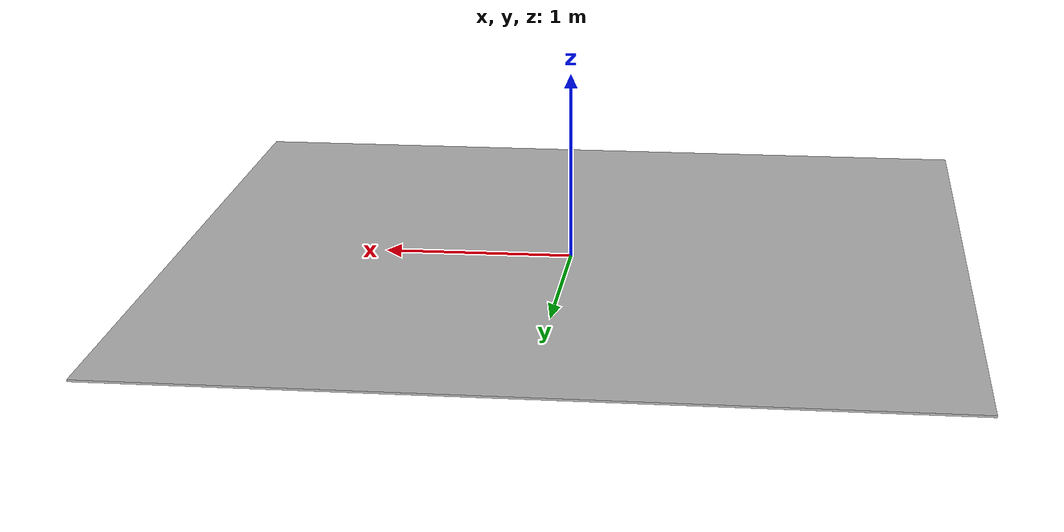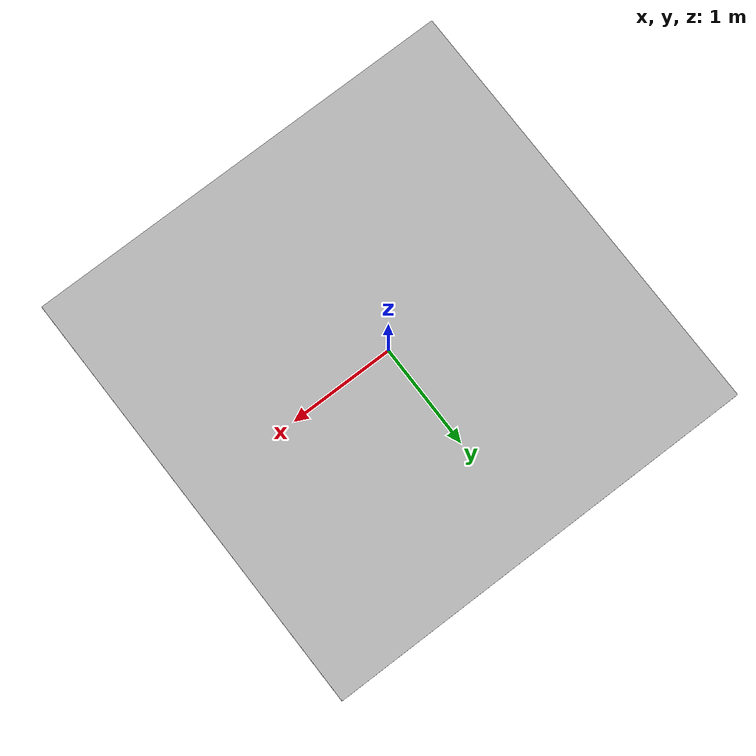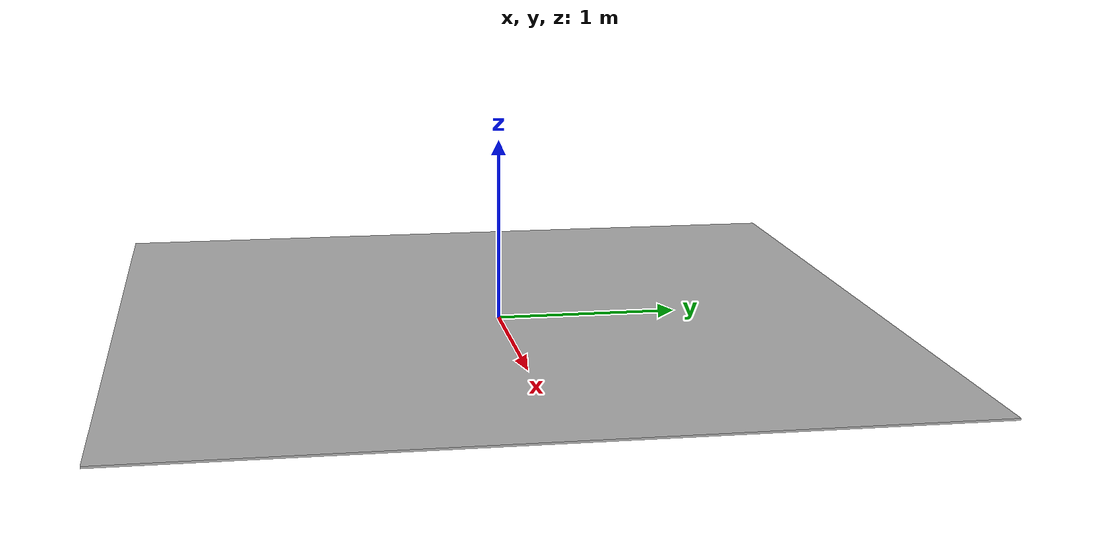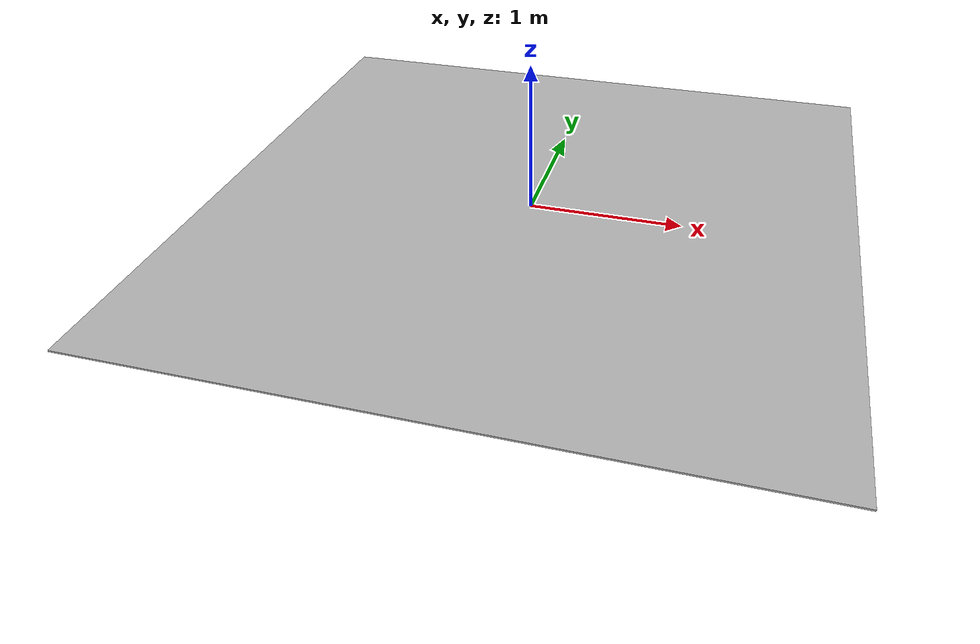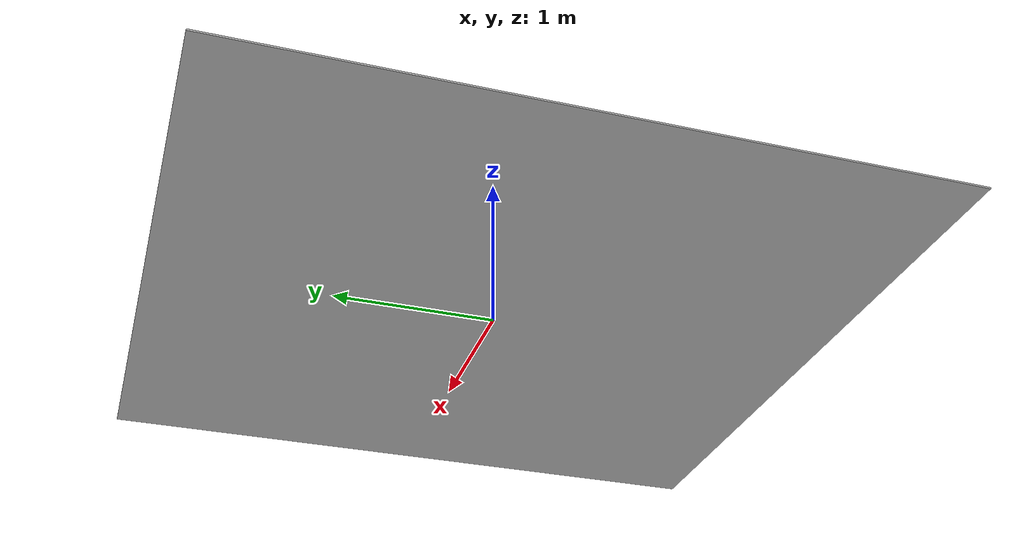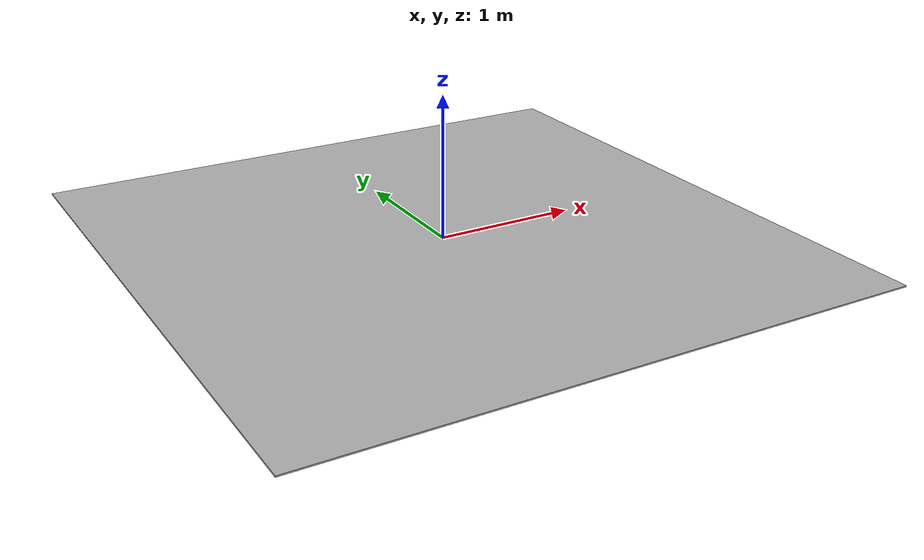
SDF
<?xml version="1.0" ?>
<sdf version="1.6">
  <model name="com_map">
    <pose>0 0 0.01 0 0 0</pose>
    <static>true</static>
    <link name="link">
      <inertial>
        <mass>0.5</mass>
        <inertia>
          <ixx>0.001</ixx>
          <ixy>0</ixy>
          <ixz>0</ixz>
          <iyy>0.001</iyy>
          <iyz>0</iyz>
          <izz>0.001</izz>
        </inertia>
      </inertial>
      <collision name="collision">
        <geometry>
          <box>
            <size>4.2 4.2 .01</size>
          </box>
        </geometry>
        <max_contacts>100</max_contacts>
        <surface>
          <bounce/>
          <friction>
            <ode/>
          </friction>
          <contact>
            <ode/>
          </contact>
        </surface>
      </collision>
      <visual name="visual">
        <cast_shadows>false</cast_shadows>
        <geometry>
          <box>
            <size>4.2 4.2 .01</size>
          </box>
        </geometry>
        <material>
          <script>
            <uri>model://com_map/materials/scripts</uri>
            <uri>model://com_map/materials/textures</uri>
            <name>MyGround/com_map</name>
          </script>
        </material>
      </visual>
    </link>
  </model>
</sdf>
